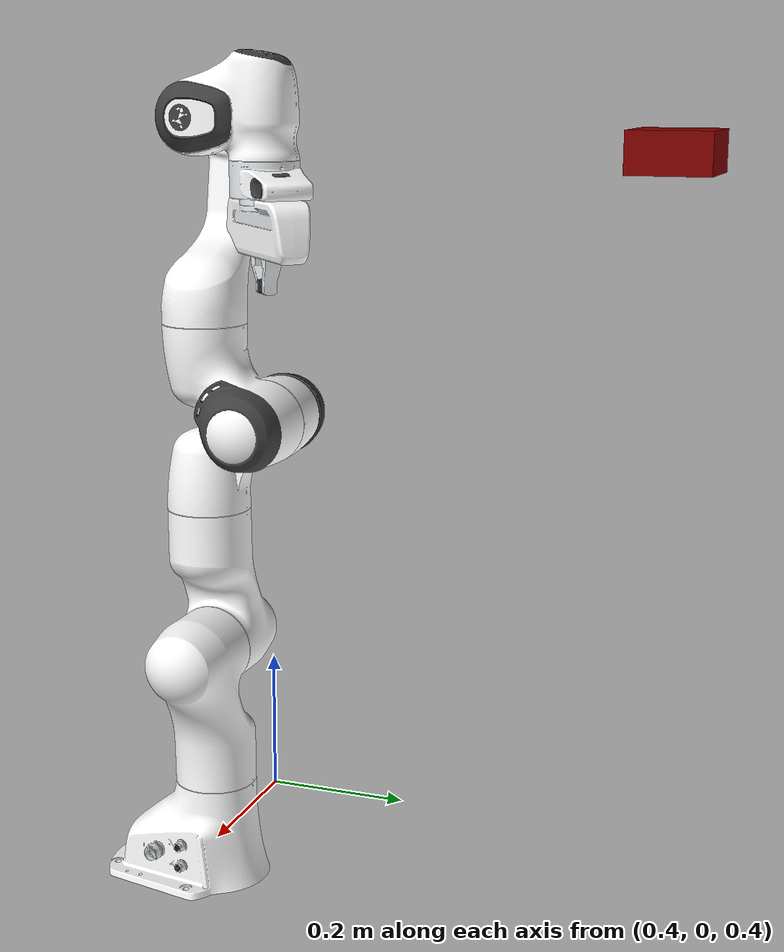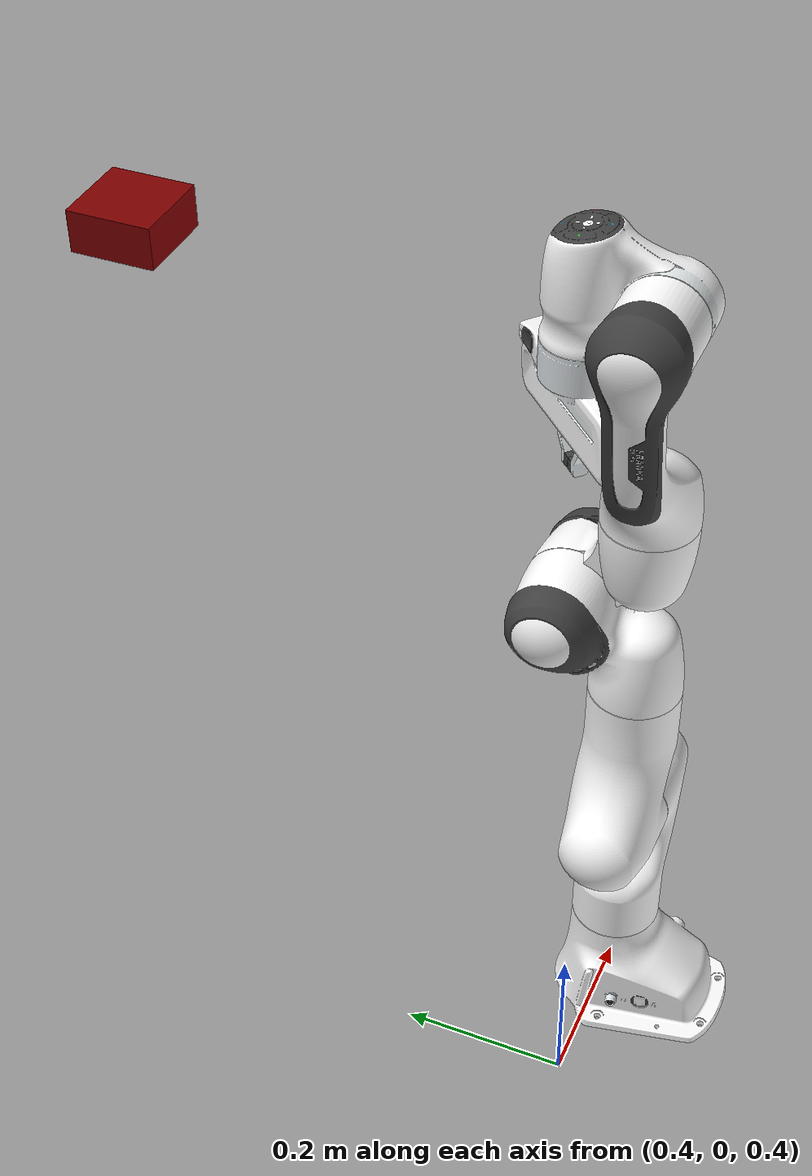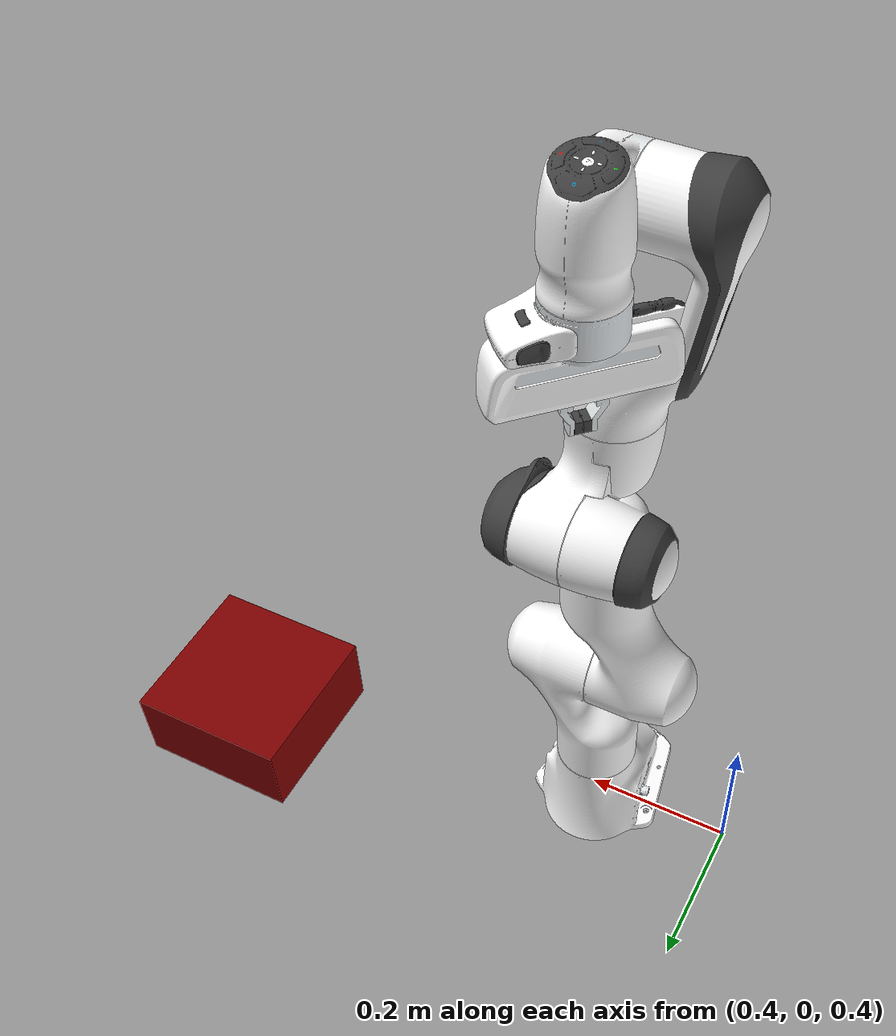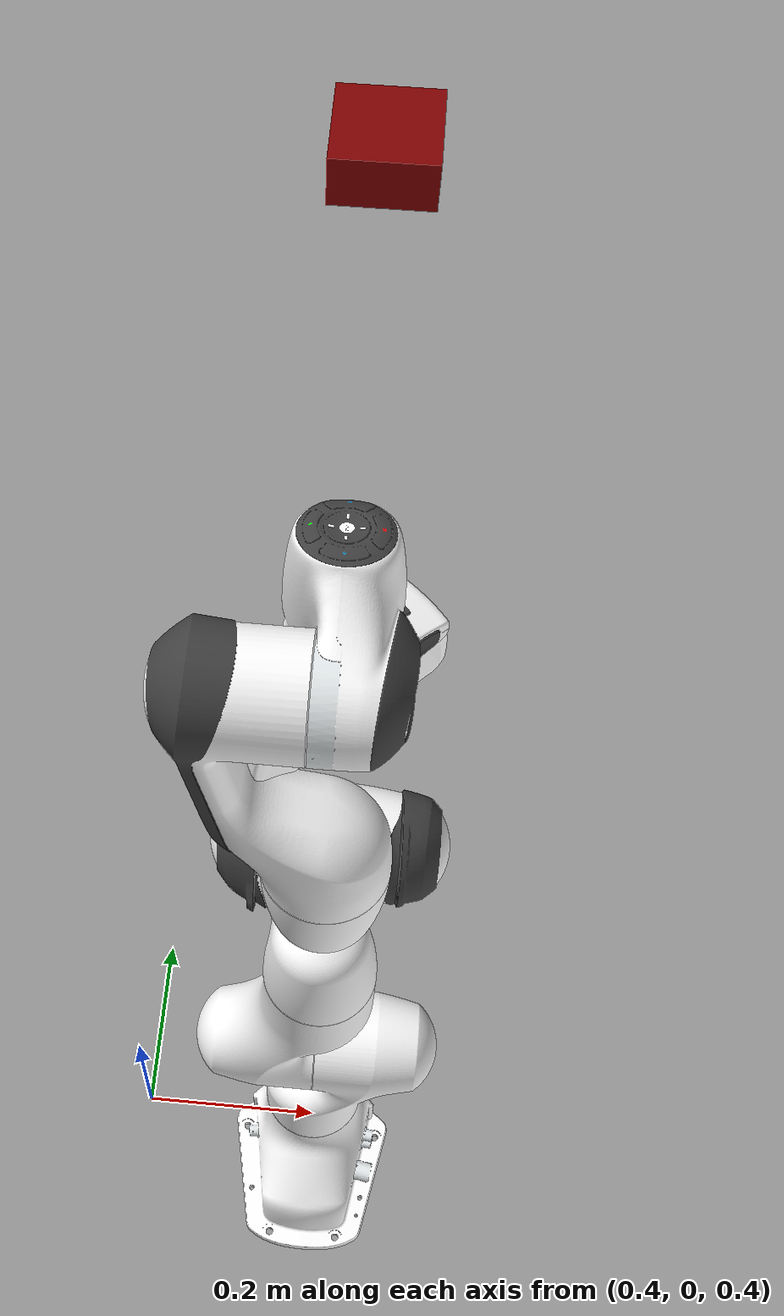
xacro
<?xml version="1.0"?>
<robot name="panda" xmlns:xacro="http://www.ros.org/wiki/xacro">

  <xacro:arg name="is_ignition" default="false"/>
  <xacro:arg name="use_gazebo_sim" default="true"/>

  <xacro:include filename="$(find panda_description)/urdf/common_properties.urdf.xacro" />
  <xacro:include filename="$(find panda_description)/urdf/arm.xacro" />
  <xacro:include filename="$(find panda_description)/urdf/sensors.xacro" />
  <xacro:include filename="$(find panda_description)/urdf/gazebo.xacro" />

  <xacro:if value="$(arg use_gazebo_sim)">
      <xacro:include filename="$(find panda_description)/urdf/panda_.ros2_control.xacro" />
  </xacro:if>
  <xacro:unless value="$(arg use_gazebo_sim)">
      <xacro:include filename="$(find panda_description)/urdf/panda.ros2_control.xacro" />
  </xacro:unless>

</robot>

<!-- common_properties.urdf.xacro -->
<robot  xmlns:xacro="http://www.ros.org/wiki/xacro">

    <material name="green">
        <color rgba="0 0.5 0 1" />
    </material>

    <material name="red">
        <color rgba="0.5 0 0 1" />
    </material>

    <material name="orange">
        <color rgba="1 0.6 0 1" />
    </material>

    <material name="grey">
        <color rgba="0.5 0.5 0.5 1" />
    </material>

    <material name="blue">
        <color rgba="0 0 0.5 1" />
    </material>

    <xacro:macro name="box_inertia" params="m x y z o_xyz o_rpy" >
        <inertial>
            <mass value="${m}" />
            <origin xyz="${o_xyz}" rpy="${o_rpy}" />
            <inertia
                ixx="${(1/12.0)*m*(y**2 + z**2)}"  ixy="0.0"  ixz="0.0"
                iyy="${(1/12.0)*m*(x**2 + z**2)}"  iyz="0.0"
                izz="${(1/12.0)*m*(x**2 + y**2)}"
            />
        </inertial>
    </xacro:macro>

    <xacro:macro name="solid_cylinder_inertia" params="m r h o_xyz o_rpy" >
        <inertial>
            <mass value="${m}" />
            <origin xyz="${o_xyz}" rpy="${o_rpy}" />
            <inertia
                ixx="${(1/12.0)*m*(3*r**2 + h**2)}"  ixy="0.0"  ixz="0.0"
                iyy="${(1/12.0)*m*(3*r**2 + h**2)}"  iyz="0.0"
                izz="${(1/2.0)*m*(r**2)}"
            />
        </inertial>
    </xacro:macro>

    <xacro:macro name="solid_sphere_inertia" params="m r o_xyz o_rpy" >
        <inertial>
            <mass value="${m}" />
            <origin xyz="${o_xyz}" rpy="${o_rpy}" />
            <inertia
                ixx="${(2/5.0)*m*(r**2)}"  ixy="0.0"  ixz="0.0"
                iyy="${(2/5.0)*m*(r**2)}"  iyz="0.0"
                izz="${(2/5.0)*m*(r**2)}"
            />
        </inertial>
    </xacro:macro>
</robot>

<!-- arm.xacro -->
<robot name="panda" xmlns:xacro="http://www.ros.org/wiki/xacro">

  <!-- World Frame -->
  <link name="world"/>

  <!-- Link 0 - Base -->
  <link name="panda_link0">
    <visual>
      <geometry>
        <mesh filename="package://panda_description/meshes/visual/link0.dae"/>
      </geometry>
    </visual>
    <collision>
      <geometry>
        <mesh filename="package://panda_description/meshes/collision/link0.obj"/>
      </geometry>
    </collision>
      <inertial>
          <origin xyz="0 0 0" rpy="0.0 0.0 0.0"/>
          <mass value="0.1"/>
          <inertia ixx="0.1" ixy="0.0" ixz="0.0" iyy="0.1" iyz="0.0" izz="0.1"/>
      </inertial>
  </link>

  <!-- World-Base Joint -->
  <joint name="virtual_joint" type="fixed">
    <parent link="world"/>
    <child link="panda_link0"/>
    <origin xyz="0.6 0 0.35" rpy="0 0 1.57"/>
  </joint>

  <!-- Link 1 -->
  <link name="panda_link1">
    <visual>
      <geometry>
        <mesh filename="package://panda_description/meshes/visual/link1.dae"/>
      </geometry>
    </visual>
    <collision>
      <geometry>
        <mesh filename="package://panda_description/meshes/collision/link1.obj"/>
      </geometry>
    </collision>
        <inertial>
            <origin xyz="0 0 0" rpy="0.0 0.0 0.0"/>
            <mass value="0.1"/>
            <inertia ixx="0.1" ixy="0.0" ixz="0.0" iyy="0.1" iyz="0.0" izz="0.1"/>
        </inertial>
  </link>

  <!-- Joint 1 -->
  <joint name="panda_joint1" type="revolute">
    <safety_controller k_position="100.0" k_velocity="40.0" soft_lower_limit="-2.8973" soft_upper_limit="2.8973"/>
    <origin rpy="0 0 0" xyz="0 0 0.333"/>
    <parent link="panda_link0"/>
    <child link="panda_link1"/>
    <axis xyz="0 0 1"/>
    <limit effort="30.0" lower="-2.9671" upper="2.9671" velocity="10.0"/>
  </joint>

  <!-- Link 2 -->
  <link name="panda_link2">
    <visual>
      <geometry>
        <mesh filename="package://panda_description/meshes/visual/link2.dae"/>
      </geometry>
    </visual>
    <collision>
      <geometry>
        <mesh filename="package://panda_description/meshes/collision/link2.obj"/>
      </geometry>
    </collision>
        <inertial>
          <origin xyz="0 0 0" rpy="0.0 0.0 0.0"/>
          <mass value="0.1"/>
          <inertia ixx="0.1" ixy="0.0" ixz="0.0" iyy="0.1" iyz="0.0" izz="0.1"/>
      </inertial>
  </link>

  <!-- Joint 2 -->
  <joint name="panda_joint2" type="revolute">
    <safety_controller k_position="100.0" k_velocity="40.0" soft_lower_limit="-1.7628" soft_upper_limit="1.7628"/>
    <origin rpy="-1.57079632679 0 0" xyz="0 0 0"/>
    <parent link="panda_link1"/>
    <child link="panda_link2"/>
    <axis xyz="0 0 1"/>
    <limit effort="30.0" lower="-1.8326" upper="1.8326" velocity="10.0"/>
  </joint>

  <!-- Link 3 -->
  <link name="panda_link3">
    <visual>
      <geometry>
        <mesh filename="package://panda_description/meshes/visual/link3.dae"/>
      </geometry>
    </visual>
    <collision>
      <geometry>
        <mesh filename="package://panda_description/meshes/collision/link3.obj"/>
      </geometry>
    </collision>
      <inertial>
          <origin xyz="0 0 0" rpy="0.0 0.0 0.0"/>
          <mass value="0.1"/>
          <inertia ixx="0.1" ixy="0.0" ixz="0.0" iyy="0.1" iyz="0.0" izz="0.1"/>
      </inertial>
  </link>

  <!-- Joint 3 -->
  <joint name="panda_joint3" type="revolute">
    <safety_controller k_position="100.0" k_velocity="40.0" soft_lower_limit="-2.8973" soft_upper_limit="2.8973"/>
    <origin rpy="1.57079632679 0 0" xyz="0 -0.316 0"/>
    <parent link="panda_link2"/>
    <child link="panda_link3"/>
    <axis xyz="0 0 1"/>
    <limit effort="30.0" lower="-2.9671" upper="2.9671" velocity="10.0"/>
  </joint>

  <!-- Link 4 -->
  <link name="panda_link4">
    <visual>
      <geometry>
        <mesh filename="package://panda_description/meshes/visual/link4.dae"/>
      </geometry>
    </visual>
    <collision>
      <geometry>
        <mesh filename="package://panda_description/meshes/collision/link4.obj"/>
      </geometry>
    </collision>
      <inertial>
          <origin xyz="0 0 0" rpy="0.0 0.0 0.0"/>
          <mass value="0.1"/>
          <inertia ixx="0.1" ixy="0.0" ixz="0.0" iyy="0.1" iyz="0.0" izz="0.1"/>
      </inertial>
  </link>

  <!-- Joint 4 -->
  <joint name="panda_joint4" type="revolute">
    <safety_controller k_position="100.0" k_velocity="40.0" soft_lower_limit="-3.0718" soft_upper_limit="0.0698"/>
    <origin rpy="1.57079632679 0 0" xyz="0.0825 0 0"/>
    <parent link="panda_link3"/>
    <child link="panda_link4"/>
    <axis xyz="0 0 1"/>
    <limit effort="30.0" lower="-3.1416" upper="0.0698" velocity="10.0"/>
  </joint>

  <!-- Link 5 -->
  <link name="panda_link5">
    <visual>
      <geometry>
        <mesh filename="package://panda_description/meshes/visual/link5.dae"/>
      </geometry>
    </visual>
    <collision>
      <geometry>
        <mesh filename="package://panda_description/meshes/collision/link5.obj"/>
      </geometry>
    </collision>
      <inertial>
          <origin xyz="0 0 0" rpy="0.0 0.0 0.0"/>
          <mass value="0.1"/>
          <inertia ixx="0.1" ixy="0.0" ixz="0.0" iyy="0.1" iyz="0.0" izz="0.1"/>
      </inertial>
  </link>

  <!-- Joint 5 -->
  <joint name="panda_joint5" type="revolute">
    <safety_controller k_position="100.0" k_velocity="40.0" soft_lower_limit="-2.8973" soft_upper_limit="2.8973"/>
    <origin rpy="-1.57079632679 0 0" xyz="-0.0825 0.384 0"/>
    <parent link="panda_link4"/>
    <child link="panda_link5"/>
    <axis xyz="0 0 1"/>
    <limit effort="30.0" lower="-2.9671" upper="2.9671" velocity="10.0"/>
  </joint>

  <!-- Link 6 -->
  <link name="panda_link6">
    <visual>
      <geometry>
        <mesh filename="package://panda_description/meshes/visual/link6.dae"/>
      </geometry>
    </visual>
    <collision>
      <geometry>
        <mesh filename="package://panda_description/meshes/collision/link6.obj"/>
      </geometry>
    </collision>
      <inertial>
          <origin xyz="0 0 0" rpy="0.0 0.0 0.0"/>
          <mass value="0.1"/>
          <inertia ixx="0.1" ixy="0.0" ixz="0.0" iyy="0.1" iyz="0.0" izz="0.1"/>
      </inertial>
  </link>

  <!-- Joint 6 -->
  <joint name="panda_joint6" type="revolute">
    <safety_controller k_position="100.0" k_velocity="40.0" soft_lower_limit="-0.0175" soft_upper_limit="3.7525"/>
    <origin rpy="1.57079632679 0 0" xyz="0 0 0"/>
    <parent link="panda_link5"/>
    <child link="panda_link6"/>
    <axis xyz="0 0 1"/>
    <limit effort="30.0" lower="-0.0873" upper="3.8223" velocity="10.0"/>
  </joint>

  <!-- Link 7 -->
  <link name="panda_link7">
    <visual>
      <geometry>
        <mesh filename="package://panda_description/meshes/visual/link7.dae"/>
      </geometry>
    </visual>
    <collision>
      <geometry>
        <mesh filename="package://panda_description/meshes/collision/link7.obj"/>
      </geometry>
    </collision>
      <inertial>
          <origin xyz="0 0 0" rpy="0.0 0.0 0.0"/>
          <mass value="0.1"/>
          <inertia ixx="0.1" ixy="0.0" ixz="0.0" iyy="0.1" iyz="0.0" izz="0.1"/>
      </inertial>
  </link>

  <!-- Joint 7 -->
  <joint name="panda_joint7" type="revolute">
    <safety_controller k_position="100.0" k_velocity="40.0" soft_lower_limit="-2.8973" soft_upper_limit="2.8973"/>
    <origin rpy="1.57079632679 0 0" xyz="0.088 0 0"/>
    <parent link="panda_link6"/>
    <child link="panda_link7"/>
    <axis xyz="0 0 1"/>
    <limit effort="30.0" lower="-2.9671" upper="2.9671" velocity="10.0"/>
  </joint>

  <!-- Hand Link -->
  <link name="panda_hand">
    <visual>
      <geometry>
        <mesh filename="package://panda_description/meshes/visual/hand.dae"/>
      </geometry>
    </visual>
    <collision>
      <geometry>
        <mesh filename="package://panda_description/meshes/collision/hand.obj"/>
      </geometry>
    </collision>
      <inertial>
          <origin xyz="0 0 0" rpy="0.0 0.0 0.0"/>
          <mass value="0.1"/>
          <inertia ixx="0.1" ixy="0.0" ixz="0.0" iyy="0.1" iyz="0.0" izz="0.1"/>
      </inertial>
  </link>

  <link name="tool_center_link"/>

  <joint name="tool_center" type="fixed">
    <parent link="panda_link7"/>
    <child link="tool_center_link"/>
    <origin rpy="0 0 0" xyz="0 0 0.21"/>

  </joint>

  <!-- Hand Joint -->
  <joint name="panda_hand_joint" type="fixed">
    <parent link="panda_link7"/>
    <child link="panda_hand"/>
    <origin rpy="0 0 -0.785398163397" xyz="0 0 0.106"/>
  </joint>

  <!-- Left Finger Link -->
  <link name="panda_leftfinger">
    <visual>
      <geometry>
        <mesh filename="package://panda_description/meshes/visual/finger.dae"/>
      </geometry>
    </visual>
    <collision>
      <geometry>
        <mesh filename="package://panda_description/meshes/collision/finger.obj"/>
      </geometry>
    </collision>
      <inertial>
          <origin xyz="0 0 0" rpy="0.0 0.0 0.0"/>
          <mass value="0.1"/>
          <inertia ixx="0.1" ixy="0.0" ixz="0.0" iyy="0.1" iyz="0.0" izz="0.1"/>
      </inertial>
  </link>

  <!-- Right Finger Link -->
  <link name="panda_rightfinger">
    <visual>
      <origin rpy="0 0 3.14159265359" xyz="0 0 0"/>
      <geometry>
        <mesh filename="package://panda_description/meshes/visual/finger.dae"/>
      </geometry>
    </visual>
    <collision>
      <origin rpy="0 0 3.14159265359" xyz="0 0 0"/>
      <geometry>
        <mesh filename="package://panda_description/meshes/collision/finger.obj"/>
      </geometry>
    </collision>
      <inertial>
          <origin xyz="0 0 0" rpy="0.0 0.0 0.0"/>
          <mass value="0.1"/>
          <inertia ixx="0.1" ixy="0.0" ixz="0.0" iyy="0.1" iyz="0.0" izz="0.1"/>
      </inertial>
  </link>

<!-- UPPER JOINT LIMITS HAVE BEEN SET TO 0.15(3x the effective upper limit of 0.05) to cricumvent an error where
      the gripper would tilt one side causing start state to be out of bounds-->
  <!-- Finger Joint 1 -->
  <joint name="panda_finger_joint1" type="prismatic">
    <parent link="panda_hand"/>
    <child link="panda_leftfinger"/>
    <origin rpy="0 0 0" xyz="0 0 0.0584"/>
    <axis xyz="0 1 0"/>
    <limit effort="30.0" lower="0.0" upper="0.15" velocity="10.0"/>
  </joint>

  <!-- Finger Joint 2 -->
  <joint name="panda_finger_joint2" type="prismatic">
    <parent link="panda_hand"/>
    <child link="panda_rightfinger"/>
    <origin rpy="0 0 0" xyz="0 0 0.0584"/>
    <axis xyz="0 -1 0"/>
    <limit effort="30.0" lower="0.0" upper="0.15" velocity="10.0"/>
  </joint>

</robot>

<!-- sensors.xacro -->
<robot name="panda" xmlns:xacro="http://www.ros.org/wiki/xacro">

    <link name="camera_link">
        <inertial>
            <origin xyz="0 0 0" rpy="0.0 0.0 0.0"/>
            <mass value="0.1"/>
            <inertia ixx="0.1" ixy="0.0" ixz="0.0" iyy="0.1" iyz="0.0" izz="0.1"/>
        </inertial>
        <visual>
            <origin xyz="0 0 0" rpy="0.0 0.0 0.0"/>
            <geometry>
                <box size="0.1 0.1 0.05"/>
            </geometry>
            <material name="red"/>
        </visual>
        <collision>
            <origin xyz="0 0 0" rpy="0.0 0.0 0.0"/>
            <geometry>
                <box size="0.1 0.1 0.05"/>
            </geometry>
            <material name="red"/>
        </collision>
    </link>

    <joint name="camera_joint" type="fixed">
        <origin xyz="0.6 0 1.0" rpy="0.0 0.0 0.0"/>
        <parent link="panda_link0"/>
        <child link="camera_link"/>
    </joint>

    <link name="camera_link_optical" />

    <joint name="camera_optical_joint" type="fixed">
        <parent link="camera_link"/>
        <child link="camera_link_optical"/>
        <origin xyz="0 0 0" rpy="${-pi/2} 0 ${-pi/2}"/>
    </joint>

    <gazebo reference="camera_link">
        <sensor name="camera" type="camera">
        <!-- Rotate camera by 90 along Y -->
            <pose>0 0 0 0 1.57 0</pose>
            <camera>
                <horizontal_fov>1.3962634</horizontal_fov>
                <image>
                    <width>640</width>
                    <height>480</height>
                    <format>R8G8B8</format>
                </image>
                <clip>
                    <near>0.1</near>
                    <far>15</far>
                </clip>
                <noise>
                    <type>gaussian</type>
                    <mean>0.0</mean>
                    <stddev>0.007</stddev>
                </noise>
                <optical_frame_id>camera_link_optical</optical_frame_id>
                <camera_info_topic>camera/camera_info</camera_info_topic>
            </camera>
            <always_on>1</always_on>
            <update_rate>20</update_rate>
            <visualize>true</visualize>
            <topic>camera/image_raw</topic>
        </sensor>
    </gazebo>

</robot>
